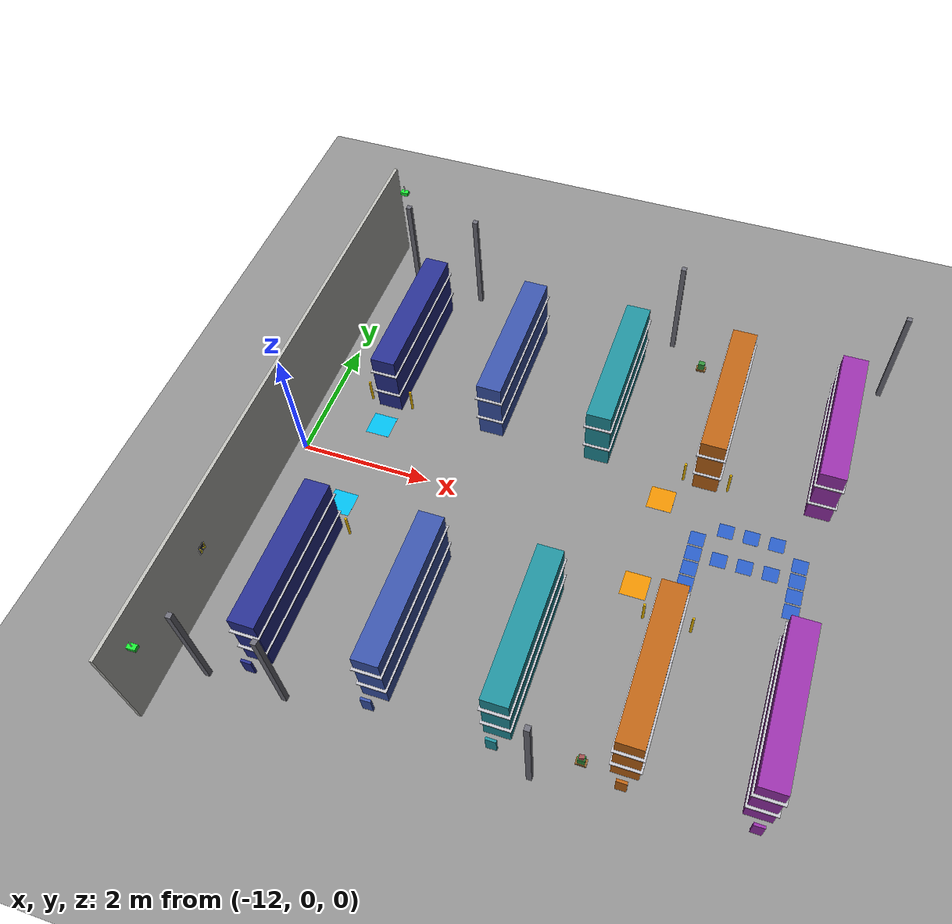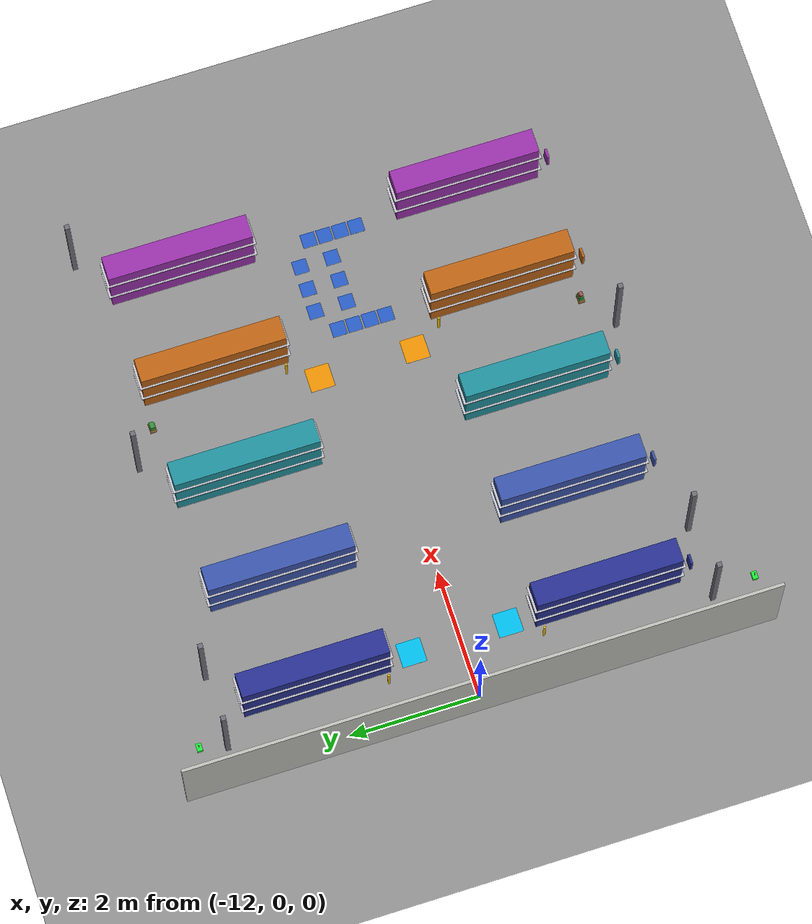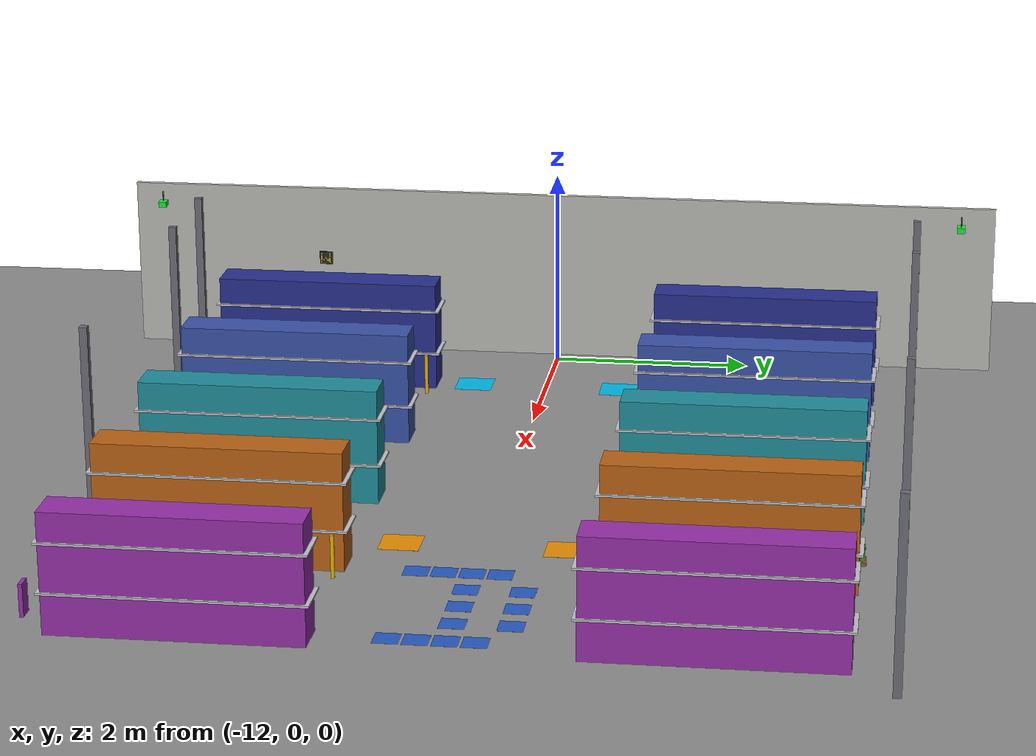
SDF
<sdf version="1.9">
 <world name="industrial_warehouse_large">
  <model name="ground_plane">
   <static>true</static>
   <pose>-0.46875 0 0 0 0 0</pose>
   <link name="link">
    <collision name="col">
     <geometry><plane><normal>0 0 1</normal><size>50 50</size></plane></geometry>
     <surface><friction><ode><mu>1.8</mu><mu2>1.8</mu2></ode></friction></surface>
    </collision>
    <visual name="vis">
     <geometry><plane><normal>0 0 1</normal><size>24.1875 9.5</size></plane></geometry>
     <material><ambient>0.55 0.55 0.55 1</ambient><diffuse>0.55 0.55 0.55 1</diffuse></material>
    </visual>
   </link>
  </model>
  <model name="wall_west">
   <static>true</static>
   <pose>-12.1875 0 0.875 0 0 0</pose>
   <link name="link">
    <collision name="col"><geometry><box><size>0.05 9.1 1.75</size></box></geometry></collision>
    <visual name="vis">
     <geometry><box><size>0.05 9.1 1.75</size></box></geometry>
     <material><ambient>0.72 0.72 0.70 1</ambient><diffuse>0.72 0.72 0.70 1</diffuse></material>
    </visual>
   </link>
  </model>
  <model name="pillar_1">
   <static>true</static>
   <pose>-10.5 3.75 0.875 0 0 0</pose>
   <link name="link">
    <collision name="col"><geometry><box><size>0.075 0.075 1.75</size></box></geometry></collision>
    <visual name="vis">
     <geometry><box><size>0.075 0.075 1.75</size></box></geometry>
     <material><ambient>0.42 0.42 0.46 1</ambient><diffuse>0.42 0.42 0.46 1</diffuse></material>
    </visual>
   </link>
  </model>
  <model name="pillar_2">
   <static>true</static>
   <pose>-10.5 -3.75 0.875 0 0 0</pose>
   <link name="link">
    <collision name="col"><geometry><box><size>0.075 0.075 1.75</size></box></geometry></collision>
    <visual name="vis">
     <geometry><box><size>0.075 0.075 1.75</size></box></geometry>
     <material><ambient>0.42 0.42 0.46 1</ambient><diffuse>0.42 0.42 0.46 1</diffuse></material>
    </visual>
   </link>
  </model>
  <model name="pillar_3">
   <static>true</static>
   <pose>-7.125 3.75 0.875 0 0 0</pose>
   <link name="link">
    <collision name="col"><geometry><box><size>0.075 0.075 1.75</size></box></geometry></collision>
    <visual name="vis">
     <geometry><box><size>0.075 0.075 1.75</size></box></geometry>
     <material><ambient>0.42 0.42 0.46 1</ambient><diffuse>0.42 0.42 0.46 1</diffuse></material>
    </visual>
   </link>
  </model>
  <model name="pillar_4">
   <static>true</static>
   <pose>-7.125 -3.75 0.875 0 0 0</pose>
   <link name="link">
    <collision name="col"><geometry><box><size>0.075 0.075 1.75</size></box></geometry></collision>
    <visual name="vis">
     <geometry><box><size>0.075 0.075 1.75</size></box></geometry>
     <material><ambient>0.42 0.42 0.46 1</ambient><diffuse>0.42 0.42 0.46 1</diffuse></material>
    </visual>
   </link>
  </model>
  <model name="pillar_5">
   <static>true</static>
   <pose>-3.75 3.75 0.875 0 0 0</pose>
   <link name="link">
    <collision name="col"><geometry><box><size>0.075 0.075 1.75</size></box></geometry></collision>
    <visual name="vis">
     <geometry><box><size>0.075 0.075 1.75</size></box></geometry>
     <material><ambient>0.42 0.42 0.46 1</ambient><diffuse>0.42 0.42 0.46 1</diffuse></material>
    </visual>
   </link>
  </model>
  <model name="pillar_11">
   <static>true</static>
   <pose>-11.625 3.75 0.875 0 0 0</pose>
   <link name="link">
    <collision name="col"><geometry><box><size>0.075 0.075 1.75</size></box></geometry></collision>
    <visual name="vis">
     <geometry><box><size>0.075 0.075 1.75</size></box></geometry>
     <material><ambient>0.42 0.42 0.46 1</ambient><diffuse>0.42 0.42 0.46 1</diffuse></material>
    </visual>
   </link>
  </model>
  <model name="pillar_12">
   <static>true</static>
   <pose>-11.625 -3.75 0.875 0 0 0</pose>
   <link name="link">
    <collision name="col"><geometry><box><size>0.075 0.075 1.75</size></box></geometry></collision>
    <visual name="vis">
     <geometry><box><size>0.075 0.075 1.75</size></box></geometry>
     <material><ambient>0.42 0.42 0.46 1</ambient><diffuse>0.42 0.42 0.46 1</diffuse></material>
    </visual>
   </link>
  </model>
  <model name="rack_rA_n">
   <static>true</static>
   <pose>-11.0625 2.25 0.55 0 0 0</pose>
   <link name="link">
    <collision name="col"><geometry><box><size>0.375 2.25 1.1</size></box></geometry></collision>
    <visual name="vis">
     <geometry><box><size>0.375 2.25 1.1</size></box></geometry>
     <material><ambient>0.15 0.18 0.55 1</ambient><diffuse>0.15 0.18 0.55 1</diffuse></material>
    </visual>
   </link>
  </model>
  <model name="rack_rA_s">
   <static>true</static>
   <pose>-11.0625 -2.25 0.55 0 0 0</pose>
   <link name="link">
    <collision name="col"><geometry><box><size>0.375 2.25 1.1</size></box></geometry></collision>
    <visual name="vis">
     <geometry><box><size>0.375 2.25 1.1</size></box></geometry>
     <material><ambient>0.15 0.18 0.55 1</ambient><diffuse>0.15 0.18 0.55 1</diffuse></material>
    </visual>
   </link>
  </model>
  <model name="rack_rB_n">
   <static>true</static>
   <pose>-9.375 2.25 0.55 0 0 0</pose>
   <link name="link">
    <collision name="col"><geometry><box><size>0.375 2.25 1.1</size></box></geometry></collision>
    <visual name="vis">
     <geometry><box><size>0.375 2.25 1.1</size></box></geometry>
     <material><ambient>0.22 0.32 0.65 1</ambient><diffuse>0.22 0.32 0.65 1</diffuse></material>
    </visual>
   </link>
  </model>
  <model name="rack_rB_s">
   <static>true</static>
   <pose>-9.375 -2.25 0.55 0 0 0</pose>
   <link name="link">
    <collision name="col"><geometry><box><size>0.375 2.25 1.1</size></box></geometry></collision>
    <visual name="vis">
     <geometry><box><size>0.375 2.25 1.1</size></box></geometry>
     <material><ambient>0.22 0.32 0.65 1</ambient><diffuse>0.22 0.32 0.65 1</diffuse></material>
    </visual>
   </link>
  </model>
  <model name="rack_rC_n">
   <static>true</static>
   <pose>-7.6875 2.25 0.55 0 0 0</pose>
   <link name="link">
    <collision name="col"><geometry><box><size>0.375 2.25 1.1</size></box></geometry></collision>
    <visual name="vis">
     <geometry><box><size>0.375 2.25 1.1</size></box></geometry>
     <material><ambient>0.12 0.55 0.60 1</ambient><diffuse>0.12 0.55 0.60 1</diffuse></material>
    </visual>
   </link>
  </model>
  <model name="rack_rC_s">
   <static>true</static>
   <pose>-7.6875 -2.25 0.55 0 0 0</pose>
   <link name="link">
    <collision name="col"><geometry><box><size>0.375 2.25 1.1</size></box></geometry></collision>
    <visual name="vis">
     <geometry><box><size>0.375 2.25 1.1</size></box></geometry>
     <material><ambient>0.12 0.55 0.60 1</ambient><diffuse>0.12 0.55 0.60 1</diffuse></material>
    </visual>
   </link>
  </model>
  <model name="rack_rD_n">
   <static>true</static>
   <pose>-6 2.25 0.55 0 0 0</pose>
   <link name="link">
    <collision name="col"><geometry><box><size>0.375 2.25 1.1</size></box></geometry></collision>
    <visual name="vis">
     <geometry><box><size>0.375 2.25 1.1</size></box></geometry>
     <material><ambient>0.72 0.38 0.08 1</ambient><diffuse>0.72 0.38 0.08 1</diffuse></material>
    </visual>
   </link>
  </model>
  <model name="rack_rD_s">
   <static>true</static>
   <pose>-6 -2.25 0.55 0 0 0</pose>
   <link name="link">
    <collision name="col"><geometry><box><size>0.375 2.25 1.1</size></box></geometry></collision>
    <visual name="vis">
     <geometry><box><size>0.375 2.25 1.1</size></box></geometry>
     <material><ambient>0.72 0.38 0.08 1</ambient><diffuse>0.72 0.38 0.08 1</diffuse></material>
    </visual>
   </link>
  </model>
  <model name="rack_rE_n">
   <static>true</static>
   <pose>-4.3125 2.25 0.55 0 0 0</pose>
   <link name="link">
    <collision name="col"><geometry><box><size>0.375 2.25 1.1</size></box></geometry></collision>
    <visual name="vis">
     <geometry><box><size>0.375 2.25 1.1</size></box></geometry>
     <material><ambient>0.58 0.18 0.65 1</ambient><diffuse>0.58 0.18 0.65 1</diffuse></material>
    </visual>
   </link>
  </model>
  <model name="rack_rE_s">
   <static>true</static>
   <pose>-4.3125 -2.25 0.55 0 0 0</pose>
   <link name="link">
    <collision name="col"><geometry><box><size>0.375 2.25 1.1</size></box></geometry></collision>
    <visual name="vis">
     <geometry><box><size>0.375 2.25 1.1</size></box></geometry>
     <material><ambient>0.58 0.18 0.65 1</ambient><diffuse>0.58 0.18 0.65 1</diffuse></material>
    </visual>
   </link>
  </model>
  <model name="boll_rA_nw">
   <static>true</static>
   <pose>-11.4 1.2 0.2 0 0 0</pose>
   <link name="link">
    <collision name="col">
     <geometry><cylinder><radius>0.01875</radius><length>0.4</length></cylinder></geometry>
    </collision>
    <visual name="vis">
     <geometry><cylinder><radius>0.01875</radius><length>0.4</length></cylinder></geometry>
     <material><ambient>0.9 0.7 0.0 1</ambient><diffuse>0.9 0.7 0.0 1</diffuse></material>
    </visual>
   </link>
  </model>
  <model name="boll_rA_sw">
   <static>true</static>
   <pose>-11.4 -1.2 0.2 0 0 0</pose>
   <link name="link">
    <collision name="col">
     <geometry><cylinder><radius>0.01875</radius><length>0.4</length></cylinder></geometry>
    </collision>
    <visual name="vis">
     <geometry><cylinder><radius>0.01875</radius><length>0.4</length></cylinder></geometry>
     <material><ambient>0.9 0.7 0.0 1</ambient><diffuse>0.9 0.7 0.0 1</diffuse></material>
    </visual>
   </link>
  </model>
  <model name="boll_rA_ne">
   <static>true</static>
   <pose>-10.725 1.2 0.2 0 0 0</pose>
   <link name="link">
    <collision name="col">
     <geometry><cylinder><radius>0.01875</radius><length>0.4</length></cylinder></geometry>
    </collision>
    <visual name="vis">
     <geometry><cylinder><radius>0.01875</radius><length>0.4</length></cylinder></geometry>
     <material><ambient>0.9 0.7 0.0 1</ambient><diffuse>0.9 0.7 0.0 1</diffuse></material>
    </visual>
   </link>
  </model>
  <model name="boll_rA_se">
   <static>true</static>
   <pose>-10.725 -1.2 0.2 0 0 0</pose>
   <link name="link">
    <collision name="col">
     <geometry><cylinder><radius>0.01875</radius><length>0.4</length></cylinder></geometry>
    </collision>
    <visual name="vis">
     <geometry><cylinder><radius>0.01875</radius><length>0.4</length></cylinder></geometry>
     <material><ambient>0.9 0.7 0.0 1</ambient><diffuse>0.9 0.7 0.0 1</diffuse></material>
    </visual>
   </link>
  </model>
  <model name="boll_rD_nw">
   <static>true</static>
   <pose>-6.3375 1.2 0.2 0 0 0</pose>
   <link name="link">
    <collision name="col">
     <geometry><cylinder><radius>0.01875</radius><length>0.4</length></cylinder></geometry>
    </collision>
    <visual name="vis">
     <geometry><cylinder><radius>0.01875</radius><length>0.4</length></cylinder></geometry>
     <material><ambient>0.9 0.7 0.0 1</ambient><diffuse>0.9 0.7 0.0 1</diffuse></material>
    </visual>
   </link>
  </model>
  <model name="boll_rD_sw">
   <static>true</static>
   <pose>-6.3375 -1.2 0.2 0 0 0</pose>
   <link name="link">
    <collision name="col">
     <geometry><cylinder><radius>0.01875</radius><length>0.4</length></cylinder></geometry>
    </collision>
    <visual name="vis">
     <geometry><cylinder><radius>0.01875</radius><length>0.4</length></cylinder></geometry>
     <material><ambient>0.9 0.7 0.0 1</ambient><diffuse>0.9 0.7 0.0 1</diffuse></material>
    </visual>
   </link>
  </model>
  <model name="boll_rD_ne">
   <static>true</static>
   <pose>-5.6625 1.2 0.2 0 0 0</pose>
   <link name="link">
    <collision name="col">
     <geometry><cylinder><radius>0.01875</radius><length>0.4</length></cylinder></geometry>
    </collision>
    <visual name="vis">
     <geometry><cylinder><radius>0.01875</radius><length>0.4</length></cylinder></geometry>
     <material><ambient>0.9 0.7 0.0 1</ambient><diffuse>0.9 0.7 0.0 1</diffuse></material>
    </visual>
   </link>
  </model>
  <model name="boll_rD_se">
   <static>true</static>
   <pose>-5.6625 -1.2 0.2 0 0 0</pose>
   <link name="link">
    <collision name="col">
     <geometry><cylinder><radius>0.01875</radius><length>0.4</length></cylinder></geometry>
    </collision>
    <visual name="vis">
     <geometry><cylinder><radius>0.01875</radius><length>0.4</length></cylinder></geometry>
     <material><ambient>0.9 0.7 0.0 1</ambient><diffuse>0.9 0.7 0.0 1</diffuse></material>
    </visual>
   </link>
  </model>
  <model name="pallet_1">
   <static>true</static>
   <pose>-11.0625 -2.625 0.01875 0 0 0</pose>
   <link name="link">
    <collision name="col"><geometry><box><size>0.15 0.1 0.0375</size></box></geometry></collision>
    <visual name="vis">
     <geometry><box><size>0.15 0.1 0.0375</size></box></geometry>
     <material><ambient>0.55 0.37 0.16 1</ambient><diffuse>0.55 0.37 0.16 1</diffuse></material>
    </visual>
   </link>
  </model>
  <model name="box_1">
   <static>true</static>
   <pose>-11.0625 -2.625 0.1 0 0 0</pose>
   <link name="link">
    <collision name="col"><geometry><box><size>0.1 0.075 0.125</size></box></geometry></collision>
    <visual name="vis">
     <geometry><box><size>0.1 0.075 0.125</size></box></geometry>
     <material><ambient>0.68 0.18 0.18 1</ambient><diffuse>0.68 0.18 0.18 1</diffuse></material>
    </visual>
   </link>
  </model>
  <model name="pallet_2">
   <static>true</static>
   <pose>-11.0625 -1.875 0.01875 0 0 0</pose>
   <link name="link">
    <collision name="col"><geometry><box><size>0.15 0.1 0.0375</size></box></geometry></collision>
    <visual name="vis">
     <geometry><box><size>0.15 0.1 0.0375</size></box></geometry>
     <material><ambient>0.55 0.37 0.16 1</ambient><diffuse>0.55 0.37 0.16 1</diffuse></material>
    </visual>
   </link>
  </model>
  <model name="box_2">
   <static>true</static>
   <pose>-11.0625 -1.875 0.1 0 0 0</pose>
   <link name="link">
    <collision name="col"><geometry><box><size>0.1 0.075 0.125</size></box></geometry></collision>
    <visual name="vis">
     <geometry><box><size>0.1 0.075 0.125</size></box></geometry>
     <material><ambient>0.68 0.18 0.18 1</ambient><diffuse>0.68 0.18 0.18 1</diffuse></material>
    </visual>
   </link>
  </model>
  <model name="pallet_3">
   <static>true</static>
   <pose>-11.0625 2.625 0.01875 0 0 0</pose>
   <link name="link">
    <collision name="col"><geometry><box><size>0.15 0.1 0.0375</size></box></geometry></collision>
    <visual name="vis">
     <geometry><box><size>0.15 0.1 0.0375</size></box></geometry>
     <material><ambient>0.55 0.37 0.16 1</ambient><diffuse>0.55 0.37 0.16 1</diffuse></material>
    </visual>
   </link>
  </model>
  <model name="box_3">
   <static>true</static>
   <pose>-11.0625 2.625 0.1 0 0 0</pose>
   <link name="link">
    <collision name="col"><geometry><box><size>0.1 0.075 0.125</size></box></geometry></collision>
    <visual name="vis">
     <geometry><box><size>0.1 0.075 0.125</size></box></geometry>
     <material><ambient>0.18 0.28 0.72 1</ambient><diffuse>0.18 0.28 0.72 1</diffuse></material>
    </visual>
   </link>
  </model>
  <model name="pallet_4">
   <static>true</static>
   <pose>-6.5625 3.375 0.01875 0 0 0</pose>
   <link name="link">
    <collision name="col"><geometry><box><size>0.15 0.1 0.0375</size></box></geometry></collision>
    <visual name="vis">
     <geometry><box><size>0.15 0.1 0.0375</size></box></geometry>
     <material><ambient>0.55 0.37 0.16 1</ambient><diffuse>0.55 0.37 0.16 1</diffuse></material>
    </visual>
   </link>
  </model>
  <model name="box_4">
   <static>true</static>
   <pose>-6.5625 3.375 0.1 0 0 0</pose>
   <link name="link">
    <collision name="col"><geometry><box><size>0.1 0.075 0.125</size></box></geometry></collision>
    <visual name="vis">
     <geometry><box><size>0.1 0.075 0.125</size></box></geometry>
     <material><ambient>0.18 0.55 0.22 1</ambient><diffuse>0.18 0.55 0.22 1</diffuse></material>
    </visual>
   </link>
  </model>
  <model name="pallet_5">
   <static>true</static>
   <pose>-6.5625 -3.375 0.01875 0 0 0</pose>
   <link name="link">
    <collision name="col"><geometry><box><size>0.15 0.1 0.0375</size></box></geometry></collision>
    <visual name="vis">
     <geometry><box><size>0.15 0.1 0.0375</size></box></geometry>
     <material><ambient>0.55 0.37 0.16 1</ambient><diffuse>0.55 0.37 0.16 1</diffuse></material>
    </visual>
   </link>
  </model>
  <model name="box_5">
   <static>true</static>
   <pose>-6.5625 -3.375 0.1 0 0 0</pose>
   <link name="link">
    <collision name="col"><geometry><box><size>0.1 0.075 0.125</size></box></geometry></collision>
    <visual name="vis">
     <geometry><box><size>0.1 0.075 0.125</size></box></geometry>
     <material><ambient>0.18 0.55 0.22 1</ambient><diffuse>0.18 0.55 0.22 1</diffuse></material>
    </visual>
   </link>
  </model>
  <model name="station_A">
   <static>true</static>
   <pose>-11.0625 -0.75 0.00025 0 0 0</pose>
   <link name="link">
    <visual name="vis">
     <geometry><box><size>0.375 0.375 0.0005</size></box></geometry>
     <material><ambient>0.0 0.72 0.9 1</ambient><diffuse>0.0 0.72 0.9 1</diffuse></material>
    </visual>
   </link>
  </model>
  <model name="station_B">
   <static>true</static>
   <pose>-11.0625 0.75 0.00025 0 0 0</pose>
   <link name="link">
    <visual name="vis">
     <geometry><box><size>0.375 0.375 0.0005</size></box></geometry>
     <material><ambient>0.0 0.72 0.9 1</ambient><diffuse>0.0 0.72 0.9 1</diffuse></material>
    </visual>
   </link>
  </model>
  <model name="station_C">
   <static>true</static>
   <pose>-6.5625 -0.75 0.00025 0 0 0</pose>
   <link name="link">
    <visual name="vis">
     <geometry><box><size>0.375 0.375 0.0005</size></box></geometry>
     <material><ambient>0.9 0.55 0.0 1</ambient><diffuse>0.9 0.55 0.0 1</diffuse></material>
    </visual>
   </link>
  </model>
  <model name="station_D">
   <static>true</static>
   <pose>-6.5625 0.75 0.00025 0 0 0</pose>
   <link name="link">
    <visual name="vis">
     <geometry><box><size>0.375 0.375 0.0005</size></box></geometry>
     <material><ambient>0.9 0.55 0.0 1</ambient><diffuse>0.9 0.55 0.0 1</diffuse></material>
    </visual>
   </link>
  </model>
  <model name="shelf_rA_n_lo">
   <static>true</static>
   <pose>-11.0625 2.25 0.375 0 0 0</pose>
   <link name="link">
    <collision name="col"><geometry><box><size>0.425 2.325 0.02</size></box></geometry></collision>
    <visual name="vis">
     <geometry><box><size>0.425 2.325 0.02</size></box></geometry>
     <material><ambient>0.75 0.75 0.78 1</ambient><diffuse>0.75 0.75 0.78 1</diffuse></material>
    </visual>
   </link>
  </model>
  <model name="shelf_rA_n_hi">
   <static>true</static>
   <pose>-11.0625 2.25 0.825 0 0 0</pose>
   <link name="link">
    <collision name="col"><geometry><box><size>0.425 2.325 0.02</size></box></geometry></collision>
    <visual name="vis">
     <geometry><box><size>0.425 2.325 0.02</size></box></geometry>
     <material><ambient>0.75 0.75 0.78 1</ambient><diffuse>0.75 0.75 0.78 1</diffuse></material>
    </visual>
   </link>
  </model>
  <model name="shelf_rA_s_lo">
   <static>true</static>
   <pose>-11.0625 -2.25 0.375 0 0 0</pose>
   <link name="link">
    <collision name="col"><geometry><box><size>0.425 2.325 0.02</size></box></geometry></collision>
    <visual name="vis">
     <geometry><box><size>0.425 2.325 0.02</size></box></geometry>
     <material><ambient>0.75 0.75 0.78 1</ambient><diffuse>0.75 0.75 0.78 1</diffuse></material>
    </visual>
   </link>
  </model>
  <model name="shelf_rA_s_hi">
   <static>true</static>
   <pose>-11.0625 -2.25 0.825 0 0 0</pose>
   <link name="link">
    <collision name="col"><geometry><box><size>0.425 2.325 0.02</size></box></geometry></collision>
    <visual name="vis">
     <geometry><box><size>0.425 2.325 0.02</size></box></geometry>
     <material><ambient>0.75 0.75 0.78 1</ambient><diffuse>0.75 0.75 0.78 1</diffuse></material>
    </visual>
   </link>
  </model>
  <model name="shelf_rB_n_lo">
   <static>true</static>
   <pose>-9.375 2.25 0.375 0 0 0</pose>
   <link name="link">
    <collision name="col"><geometry><box><size>0.425 2.325 0.02</size></box></geometry></collision>
    <visual name="vis">
     <geometry><box><size>0.425 2.325 0.02</size></box></geometry>
     <material><ambient>0.75 0.75 0.78 1</ambient><diffuse>0.75 0.75 0.78 1</diffuse></material>
    </visual>
   </link>
  </model>
  <model name="shelf_rB_n_hi">
   <static>true</static>
   <pose>-9.375 2.25 0.825 0 0 0</pose>
   <link name="link">
    <collision name="col"><geometry><box><size>0.425 2.325 0.02</size></box></geometry></collision>
    <visual name="vis">
     <geometry><box><size>0.425 2.325 0.02</size></box></geometry>
     <material><ambient>0.75 0.75 0.78 1</ambient><diffuse>0.75 0.75 0.78 1</diffuse></material>
    </visual>
   </link>
  </model>
  <model name="shelf_rB_s_lo">
   <static>true</static>
   <pose>-9.375 -2.25 0.375 0 0 0</pose>
   <link name="link">
    <collision name="col"><geometry><box><size>0.425 2.325 0.02</size></box></geometry></collision>
    <visual name="vis">
     <geometry><box><size>0.425 2.325 0.02</size></box></geometry>
     <material><ambient>0.75 0.75 0.78 1</ambient><diffuse>0.75 0.75 0.78 1</diffuse></material>
    </visual>
   </link>
  </model>
  <model name="shelf_rB_s_hi">
   <static>true</static>
   <pose>-9.375 -2.25 0.825 0 0 0</pose>
   <link name="link">
    <collision name="col"><geometry><box><size>0.425 2.325 0.02</size></box></geometry></collision>
    <visual name="vis">
     <geometry><box><size>0.425 2.325 0.02</size></box></geometry>
     <material><ambient>0.75 0.75 0.78 1</ambient><diffuse>0.75 0.75 0.78 1</diffuse></material>
    </visual>
   </link>
  </model>
  <model name="shelf_rC_n_lo">
   <static>true</static>
   <pose>-7.6875 2.25 0.375 0 0 0</pose>
   <link name="link">
    <collision name="col"><geometry><box><size>0.425 2.325 0.02</size></box></geometry></collision>
    <visual name="vis">
     <geometry><box><size>0.425 2.325 0.02</size></box></geometry>
     <material><ambient>0.75 0.75 0.78 1</ambient><diffuse>0.75 0.75 0.78 1</diffuse></material>
    </visual>
   </link>
  </model>
  <model name="shelf_rC_n_hi">
   <static>true</static>
   <pose>-7.6875 2.25 0.825 0 0 0</pose>
   <link name="link">
    <collision name="col"><geometry><box><size>0.425 2.325 0.02</size></box></geometry></collision>
    <visual name="vis">
     <geometry><box><size>0.425 2.325 0.02</size></box></geometry>
     <material><ambient>0.75 0.75 0.78 1</ambient><diffuse>0.75 0.75 0.78 1</diffuse></material>
    </visual>
   </link>
  </model>
  <model name="shelf_rC_s_lo">
   <static>true</static>
   <pose>-7.6875 -2.25 0.375 0 0 0</pose>
   <link name="link">
    <collision name="col"><geometry><box><size>0.425 2.325 0.02</size></box></geometry></collision>
    <visual name="vis">
     <geometry><box><size>0.425 2.325 0.02</size></box></geometry>
     <material><ambient>0.75 0.75 0.78 1</ambient><diffuse>0.75 0.75 0.78 1</diffuse></material>
    </visual>
   </link>
  </model>
  <model name="shelf_rC_s_hi">
   <static>true</static>
   <pose>-7.6875 -2.25 0.825 0 0 0</pose>
   <link name="link">
    <collision name="col"><geometry><box><size>0.425 2.325 0.02</size></box></geometry></collision>
    <visual name="vis">
     <geometry><box><size>0.425 2.325 0.02</size></box></geometry>
     <material><ambient>0.75 0.75 0.78 1</ambient><diffuse>0.75 0.75 0.78 1</diffuse></material>
    </visual>
   </link>
  </model>
  <model name="shelf_rD_n_lo">
   <static>true</static>
   <pose>-6 2.25 0.375 0 0 0</pose>
   <link name="link">
    <collision name="col"><geometry><box><size>0.425 2.325 0.02</size></box></geometry></collision>
    <visual name="vis">
     <geometry><box><size>0.425 2.325 0.02</size></box></geometry>
     <material><ambient>0.75 0.75 0.78 1</ambient><diffuse>0.75 0.75 0.78 1</diffuse></material>
    </visual>
   </link>
  </model>
  <model name="shelf_rD_n_hi">
   <static>true</static>
   <pose>-6 2.25 0.825 0 0 0</pose>
   <link name="link">
    <collision name="col"><geometry><box><size>0.425 2.325 0.02</size></box></geometry></collision>
    <visual name="vis">
     <geometry><box><size>0.425 2.325 0.02</size></box></geometry>
     <material><ambient>0.75 0.75 0.78 1</ambient><diffuse>0.75 0.75 0.78 1</diffuse></material>
    </visual>
   </link>
  </model>
  <model name="shelf_rD_s_lo">
   <static>true</static>
   <pose>-6 -2.25 0.375 0 0 0</pose>
   <link name="link">
    <collision name="col"><geometry><box><size>0.425 2.325 0.02</size></box></geometry></collision>
    <visual name="vis">
     <geometry><box><size>0.425 2.325 0.02</size></box></geometry>
     <material><ambient>0.75 0.75 0.78 1</ambient><diffuse>0.75 0.75 0.78 1</diffuse></material>
    </visual>
   </link>
  </model>
  <model name="shelf_rD_s_hi">
   <static>true</static>
   <pose>-6 -2.25 0.825 0 0 0</pose>
   <link name="link">
    <collision name="col"><geometry><box><size>0.425 2.325 0.02</size></box></geometry></collision>
    <visual name="vis">
     <geometry><box><size>0.425 2.325 0.02</size></box></geometry>
     <material><ambient>0.75 0.75 0.78 1</ambient><diffuse>0.75 0.75 0.78 1</diffuse></material>
    </visual>
   </link>
  </model>
  <model name="shelf_rE_n_lo">
   <static>true</static>
   <pose>-4.3125 2.25 0.375 0 0 0</pose>
   <link name="link">
    <collision name="col"><geometry><box><size>0.425 2.325 0.02</size></box></geometry></collision>
    <visual name="vis">
     <geometry><box><size>0.425 2.325 0.02</size></box></geometry>
     <material><ambient>0.75 0.75 0.78 1</ambient><diffuse>0.75 0.75 0.78 1</diffuse></material>
    </visual>
   </link>
  </model>
  <model name="shelf_rE_n_hi">
   <static>true</static>
   <pose>-4.3125 2.25 0.825 0 0 0</pose>
   <link name="link">
    <collision name="col"><geometry><box><size>0.425 2.325 0.02</size></box></geometry></collision>
    <visual name="vis">
     <geometry><box><size>0.425 2.325 0.02</size></box></geometry>
     <material><ambient>0.75 0.75 0.78 1</ambient><diffuse>0.75 0.75 0.78 1</diffuse></material>
    </visual>
   </link>
  </model>
  <model name="shelf_rE_s_lo">
   <static>true</static>
   <pose>-4.3125 -2.25 0.375 0 0 0</pose>
   <link name="link">
    <collision name="col"><geometry><box><size>0.425 2.325 0.02</size></box></geometry></collision>
    <visual name="vis">
     <geometry><box><size>0.425 2.325 0.02</size></box></geometry>
     <material><ambient>0.75 0.75 0.78 1</ambient><diffuse>0.75 0.75 0.78 1</diffuse></material>
    </visual>
   </link>
  </model>
  <model name="shelf_rE_s_hi">
   <static>true</static>
   <pose>-4.3125 -2.25 0.825 0 0 0</pose>
   <link name="link">
    <collision name="col"><geometry><box><size>0.425 2.325 0.02</size></box></geometry></collision>
    <visual name="vis">
     <geometry><box><size>0.425 2.325 0.02</size></box></geometry>
     <material><ambient>0.75 0.75 0.78 1</ambient><diffuse>0.75 0.75 0.78 1</diffuse></material>
    </visual>
   </link>
  </model>
  <model name="sign_row_A">
   <static>true</static>
   <pose>-11.0625 -3.575 0.25 0 0 0</pose>
   <link name="link">
    <collision name="col"><geometry><box><size>0.15 0.0375 0.3</size></box></geometry></collision>
    <visual name="vis">
     <geometry><box><size>0.15 0.0375 0.3</size></box></geometry>
     <material><ambient>0.15 0.18 0.55 1</ambient><diffuse>0.15 0.18 0.55 1</diffuse></material>
    </visual>
   </link>
  </model>
  <model name="sign_row_B">
   <static>true</static>
   <pose>-9.375 -3.575 0.25 0 0 0</pose>
   <link name="link">
    <collision name="col"><geometry><box><size>0.15 0.0375 0.3</size></box></geometry></collision>
    <visual name="vis">
     <geometry><box><size>0.15 0.0375 0.3</size></box></geometry>
     <material><ambient>0.22 0.32 0.65 1</ambient><diffuse>0.22 0.32 0.65 1</diffuse></material>
    </visual>
   </link>
  </model>
  <model name="sign_row_C">
   <static>true</static>
   <pose>-7.6875 -3.575 0.25 0 0 0</pose>
   <link name="link">
    <collision name="col"><geometry><box><size>0.15 0.0375 0.3</size></box></geometry></collision>
    <visual name="vis">
     <geometry><box><size>0.15 0.0375 0.3</size></box></geometry>
     <material><ambient>0.12 0.55 0.60 1</ambient><diffuse>0.12 0.55 0.60 1</diffuse></material>
    </visual>
   </link>
  </model>
  <model name="sign_row_D">
   <static>true</static>
   <pose>-6 -3.575 0.25 0 0 0</pose>
   <link name="link">
    <collision name="col"><geometry><box><size>0.15 0.0375 0.3</size></box></geometry></collision>
    <visual name="vis">
     <geometry><box><size>0.15 0.0375 0.3</size></box></geometry>
     <material><ambient>0.72 0.38 0.08 1</ambient><diffuse>0.72 0.38 0.08 1</diffuse></material>
    </visual>
   </link>
  </model>
  <model name="sign_row_E">
   <static>true</static>
   <pose>-4.3125 -3.575 0.25 0 0 0</pose>
   <link name="link">
    <collision name="col"><geometry><box><size>0.15 0.0375 0.3</size></box></geometry></collision>
    <visual name="vis">
     <geometry><box><size>0.15 0.0375 0.3</size></box></geometry>
     <material><ambient>0.58 0.18 0.65 1</ambient><diffuse>0.58 0.18 0.65 1</diffuse></material>
    </visual>
   </link>
  </model>
  <model name="compass_west_plate">
   <static>true</static>
   <pose>-12.1125 -2.5 1 0 0 0</pose>
   <link name="link">
    <collision name="col"><geometry><box><size>0.0075 0.1375 0.1375</size></box></geometry></collision>
    <visual name="vis">
     <geometry><box><size>0.0075 0.1375 0.1375</size></box></geometry>
     <material><ambient>0.15 0.15 0.17 1</ambient><diffuse>0.15 0.15 0.17 1</diffuse></material>
    </visual>
   </link>
  </model>
  <model name="compass_west_px1">
   <static>true</static>
   <pose>-12.09375 -2.545 1.045 0 0 0</pose>
   <link name="link">
    <visual name="vis">
     <geometry><box><size>0.005 0.0175 0.0175</size></box></geometry>
     <material><ambient>0.95 0.85 0.1 1</ambient><diffuse>0.95 0.85 0.1 1</diffuse></material>
    </visual>
   </link>
  </model>
  <model name="compass_west_px2">
   <static>true</static>
   <pose>-12.09375 -2.455 1.045 0 0 0</pose>
   <link name="link">
    <visual name="vis">
     <geometry><box><size>0.005 0.0175 0.0175</size></box></geometry>
     <material><ambient>0.95 0.85 0.1 1</ambient><diffuse>0.95 0.85 0.1 1</diffuse></material>
    </visual>
   </link>
  </model>
  <model name="compass_west_px3">
   <static>true</static>
   <pose>-12.09375 -2.545 1.0225 0 0 0</pose>
   <link name="link">
    <visual name="vis">
     <geometry><box><size>0.005 0.0175 0.0175</size></box></geometry>
     <material><ambient>0.95 0.85 0.1 1</ambient><diffuse>0.95 0.85 0.1 1</diffuse></material>
    </visual>
   </link>
  </model>
  <model name="compass_west_px4">
   <static>true</static>
   <pose>-12.09375 -2.455 1.0225 0 0 0</pose>
   <link name="link">
    <visual name="vis">
     <geometry><box><size>0.005 0.0175 0.0175</size></box></geometry>
     <material><ambient>0.95 0.85 0.1 1</ambient><diffuse>0.95 0.85 0.1 1</diffuse></material>
    </visual>
   </link>
  </model>
  <model name="compass_west_px5">
   <static>true</static>
   <pose>-12.09375 -2.545 1 0 0 0</pose>
   <link name="link">
    <visual name="vis">
     <geometry><box><size>0.005 0.0175 0.0175</size></box></geometry>
     <material><ambient>0.95 0.85 0.1 1</ambient><diffuse>0.95 0.85 0.1 1</diffuse></material>
    </visual>
   </link>
  </model>
  <model name="compass_west_px6">
   <static>true</static>
   <pose>-12.09375 -2.5 1 0 0 0</pose>
   <link name="link">
    <visual name="vis">
     <geometry><box><size>0.005 0.0175 0.0175</size></box></geometry>
     <material><ambient>0.95 0.85 0.1 1</ambient><diffuse>0.95 0.85 0.1 1</diffuse></material>
    </visual>
   </link>
  </model>
  <model name="compass_west_px7">
   <static>true</static>
   <pose>-12.09375 -2.455 1 0 0 0</pose>
   <link name="link">
    <visual name="vis">
     <geometry><box><size>0.005 0.0175 0.0175</size></box></geometry>
     <material><ambient>0.95 0.85 0.1 1</ambient><diffuse>0.95 0.85 0.1 1</diffuse></material>
    </visual>
   </link>
  </model>
  <model name="compass_west_px8">
   <static>true</static>
   <pose>-12.09375 -2.545 0.9775 0 0 0</pose>
   <link name="link">
    <visual name="vis">
     <geometry><box><size>0.005 0.0175 0.0175</size></box></geometry>
     <material><ambient>0.95 0.85 0.1 1</ambient><diffuse>0.95 0.85 0.1 1</diffuse></material>
    </visual>
   </link>
  </model>
  <model name="compass_west_px9">
   <static>true</static>
   <pose>-12.09375 -2.5225 0.9775 0 0 0</pose>
   <link name="link">
    <visual name="vis">
     <geometry><box><size>0.005 0.0175 0.0175</size></box></geometry>
     <material><ambient>0.95 0.85 0.1 1</ambient><diffuse>0.95 0.85 0.1 1</diffuse></material>
    </visual>
   </link>
  </model>
  <model name="compass_west_px10">
   <static>true</static>
   <pose>-12.09375 -2.4775 0.9775 0 0 0</pose>
   <link name="link">
    <visual name="vis">
     <geometry><box><size>0.005 0.0175 0.0175</size></box></geometry>
     <material><ambient>0.95 0.85 0.1 1</ambient><diffuse>0.95 0.85 0.1 1</diffuse></material>
    </visual>
   </link>
  </model>
  <model name="compass_west_px11">
   <static>true</static>
   <pose>-12.09375 -2.455 0.9775 0 0 0</pose>
   <link name="link">
    <visual name="vis">
     <geometry><box><size>0.005 0.0175 0.0175</size></box></geometry>
     <material><ambient>0.95 0.85 0.1 1</ambient><diffuse>0.95 0.85 0.1 1</diffuse></material>
    </visual>
   </link>
  </model>
  <model name="compass_west_px12">
   <static>true</static>
   <pose>-12.09375 -2.545 0.955 0 0 0</pose>
   <link name="link">
    <visual name="vis">
     <geometry><box><size>0.005 0.0175 0.0175</size></box></geometry>
     <material><ambient>0.95 0.85 0.1 1</ambient><diffuse>0.95 0.85 0.1 1</diffuse></material>
    </visual>
   </link>
  </model>
  <model name="compass_west_px13">
   <static>true</static>
   <pose>-12.09375 -2.455 0.955 0 0 0</pose>
   <link name="link">
    <visual name="vis">
     <geometry><box><size>0.005 0.0175 0.0175</size></box></geometry>
     <material><ambient>0.95 0.85 0.1 1</ambient><diffuse>0.95 0.85 0.1 1</diffuse></material>
    </visual>
   </link>
  </model>
  <model name="room_label_A_px1">
   <static>true</static>
   <pose>-5.53125 0.5 0.00025 0 0 0</pose>
   <link name="link">
    <visual name="vis">
     <geometry><box><size>0.225 0.225 0.0005</size></box></geometry>
     <material><ambient>0.15 0.35 0.75 1</ambient><diffuse>0.15 0.35 0.75 1</diffuse></material>
    </visual>
   </link>
  </model>
  <model name="room_label_A_px2">
   <static>true</static>
   <pose>-5.15625 0.5 0.00025 0 0 0</pose>
   <link name="link">
    <visual name="vis">
     <geometry><box><size>0.225 0.225 0.0005</size></box></geometry>
     <material><ambient>0.15 0.35 0.75 1</ambient><diffuse>0.15 0.35 0.75 1</diffuse></material>
    </visual>
   </link>
  </model>
  <model name="room_label_A_px3">
   <static>true</static>
   <pose>-4.78125 0.5 0.00025 0 0 0</pose>
   <link name="link">
    <visual name="vis">
     <geometry><box><size>0.225 0.225 0.0005</size></box></geometry>
     <material><ambient>0.15 0.35 0.75 1</ambient><diffuse>0.15 0.35 0.75 1</diffuse></material>
    </visual>
   </link>
  </model>
  <model name="room_label_A_px4">
   <static>true</static>
   <pose>-5.90625 0.25 0.00025 0 0 0</pose>
   <link name="link">
    <visual name="vis">
     <geometry><box><size>0.225 0.225 0.0005</size></box></geometry>
     <material><ambient>0.15 0.35 0.75 1</ambient><diffuse>0.15 0.35 0.75 1</diffuse></material>
    </visual>
   </link>
  </model>
  <model name="room_label_A_px5">
   <static>true</static>
   <pose>-4.40625 0.25 0.00025 0 0 0</pose>
   <link name="link">
    <visual name="vis">
     <geometry><box><size>0.225 0.225 0.0005</size></box></geometry>
     <material><ambient>0.15 0.35 0.75 1</ambient><diffuse>0.15 0.35 0.75 1</diffuse></material>
    </visual>
   </link>
  </model>
  <model name="room_label_A_px6">
   <static>true</static>
   <pose>-5.90625 0 0.00025 0 0 0</pose>
   <link name="link">
    <visual name="vis">
     <geometry><box><size>0.225 0.225 0.0005</size></box></geometry>
     <material><ambient>0.15 0.35 0.75 1</ambient><diffuse>0.15 0.35 0.75 1</diffuse></material>
    </visual>
   </link>
  </model>
  <model name="room_label_A_px7">
   <static>true</static>
   <pose>-5.53125 0 0.00025 0 0 0</pose>
   <link name="link">
    <visual name="vis">
     <geometry><box><size>0.225 0.225 0.0005</size></box></geometry>
     <material><ambient>0.15 0.35 0.75 1</ambient><diffuse>0.15 0.35 0.75 1</diffuse></material>
    </visual>
   </link>
  </model>
  <model name="room_label_A_px8">
   <static>true</static>
   <pose>-5.15625 0 0.00025 0 0 0</pose>
   <link name="link">
    <visual name="vis">
     <geometry><box><size>0.225 0.225 0.0005</size></box></geometry>
     <material><ambient>0.15 0.35 0.75 1</ambient><diffuse>0.15 0.35 0.75 1</diffuse></material>
    </visual>
   </link>
  </model>
  <model name="room_label_A_px9">
   <static>true</static>
   <pose>-4.78125 0 0.00025 0 0 0</pose>
   <link name="link">
    <visual name="vis">
     <geometry><box><size>0.225 0.225 0.0005</size></box></geometry>
     <material><ambient>0.15 0.35 0.75 1</ambient><diffuse>0.15 0.35 0.75 1</diffuse></material>
    </visual>
   </link>
  </model>
  <model name="room_label_A_px10">
   <static>true</static>
   <pose>-4.40625 0 0.00025 0 0 0</pose>
   <link name="link">
    <visual name="vis">
     <geometry><box><size>0.225 0.225 0.0005</size></box></geometry>
     <material><ambient>0.15 0.35 0.75 1</ambient><diffuse>0.15 0.35 0.75 1</diffuse></material>
    </visual>
   </link>
  </model>
  <model name="room_label_A_px11">
   <static>true</static>
   <pose>-5.90625 -0.25 0.00025 0 0 0</pose>
   <link name="link">
    <visual name="vis">
     <geometry><box><size>0.225 0.225 0.0005</size></box></geometry>
     <material><ambient>0.15 0.35 0.75 1</ambient><diffuse>0.15 0.35 0.75 1</diffuse></material>
    </visual>
   </link>
  </model>
  <model name="room_label_A_px12">
   <static>true</static>
   <pose>-4.40625 -0.25 0.00025 0 0 0</pose>
   <link name="link">
    <visual name="vis">
     <geometry><box><size>0.225 0.225 0.0005</size></box></geometry>
     <material><ambient>0.15 0.35 0.75 1</ambient><diffuse>0.15 0.35 0.75 1</diffuse></material>
    </visual>
   </link>
  </model>
  <model name="room_label_A_px13">
   <static>true</static>
   <pose>-5.90625 -0.5 0.00025 0 0 0</pose>
   <link name="link">
    <visual name="vis">
     <geometry><box><size>0.225 0.225 0.0005</size></box></geometry>
     <material><ambient>0.15 0.35 0.75 1</ambient><diffuse>0.15 0.35 0.75 1</diffuse></material>
    </visual>
   </link>
  </model>
  <model name="room_label_A_px14">
   <static>true</static>
   <pose>-4.40625 -0.5 0.00025 0 0 0</pose>
   <link name="link">
    <visual name="vis">
     <geometry><box><size>0.225 0.225 0.0005</size></box></geometry>
     <material><ambient>0.15 0.35 0.75 1</ambient><diffuse>0.15 0.35 0.75 1</diffuse></material>
    </visual>
   </link>
  </model>
  <model name="crate_extra_1">
   <static>true</static>
   <pose>-11.0625 -2.625 0.195 0 0 0.3</pose>
   <link name="link">
    <collision name="col"><geometry><box><size>0.07 0.055 0.07</size></box></geometry></collision>
    <visual name="vis">
     <geometry><box><size>0.07 0.055 0.07</size></box></geometry>
     <material><ambient>0.75 0.65 0.15 1</ambient><diffuse>0.75 0.65 0.15 1</diffuse></material>
    </visual>
   </link>
  </model>
  <model name="crate_extra_2">
   <static>true</static>
   <pose>-11.0625 2.625 0.195 0 0 -0.2</pose>
   <link name="link">
    <collision name="col"><geometry><box><size>0.07 0.055 0.07</size></box></geometry></collision>
    <visual name="vis">
     <geometry><box><size>0.07 0.055 0.07</size></box></geometry>
     <material><ambient>0.3 0.42 0.2 1</ambient><diffuse>0.3 0.42 0.2 1</diffuse></material>
    </visual>
   </link>
  </model>
  <model name="crate_extra_3">
   <static>true</static>
   <pose>-6.5625 -3.375 0.195 0 0 0.15</pose>
   <link name="link">
    <collision name="col"><geometry><box><size>0.07 0.055 0.07</size></box></geometry></collision>
    <visual name="vis">
     <geometry><box><size>0.07 0.055 0.07</size></box></geometry>
     <material><ambient>0.6 0.3 0.3 1</ambient><diffuse>0.6 0.3 0.3 1</diffuse></material>
    </visual>
   </link>
  </model>
  <model name="uwb_anchor_0">
   <static>true</static>
   <pose>-11.9 -4.2 1.6 0 0 0</pose>
   <link name="link">
    <visual name="box">
     <geometry><box><size>0.12 0.08 0.06</size></box></geometry>
     <material>
      <ambient>0.1 0.9 0.2 1</ambient>
      <diffuse>0.1 0.9 0.2 1</diffuse>
      <emissive>0.05 0.4 0.1 1</emissive>
     </material>
    </visual>
    <visual name="ant">
     <pose>0 0 0.08 0 0 0</pose>
     <geometry><cylinder><radius>0.006</radius><length>0.1</length></cylinder></geometry>
     <material><ambient>0.15 0.15 0.15 1</ambient><diffuse>0.15 0.15 0.15 1</diffuse></material>
    </visual>
   </link>
  </model>
  <model name="uwb_anchor_1">
   <static>true</static>
   <pose>-11.9 4.2 1.6 0 0 0</pose>
   <link name="link">
    <visual name="box">
     <geometry><box><size>0.12 0.08 0.06</size></box></geometry>
     <material>
      <ambient>0.1 0.9 0.2 1</ambient>
      <diffuse>0.1 0.9 0.2 1</diffuse>
      <emissive>0.05 0.4 0.1 1</emissive>
     </material>
    </visual>
    <visual name="ant">
     <pose>0 0 0.08 0 0 0</pose>
     <geometry><cylinder><radius>0.006</radius><length>0.1</length></cylinder></geometry>
     <material><ambient>0.15 0.15 0.15 1</ambient><diffuse>0.15 0.15 0.15 1</diffuse></material>
    </visual>
   </link>
  </model>
 </world>
</sdf>
